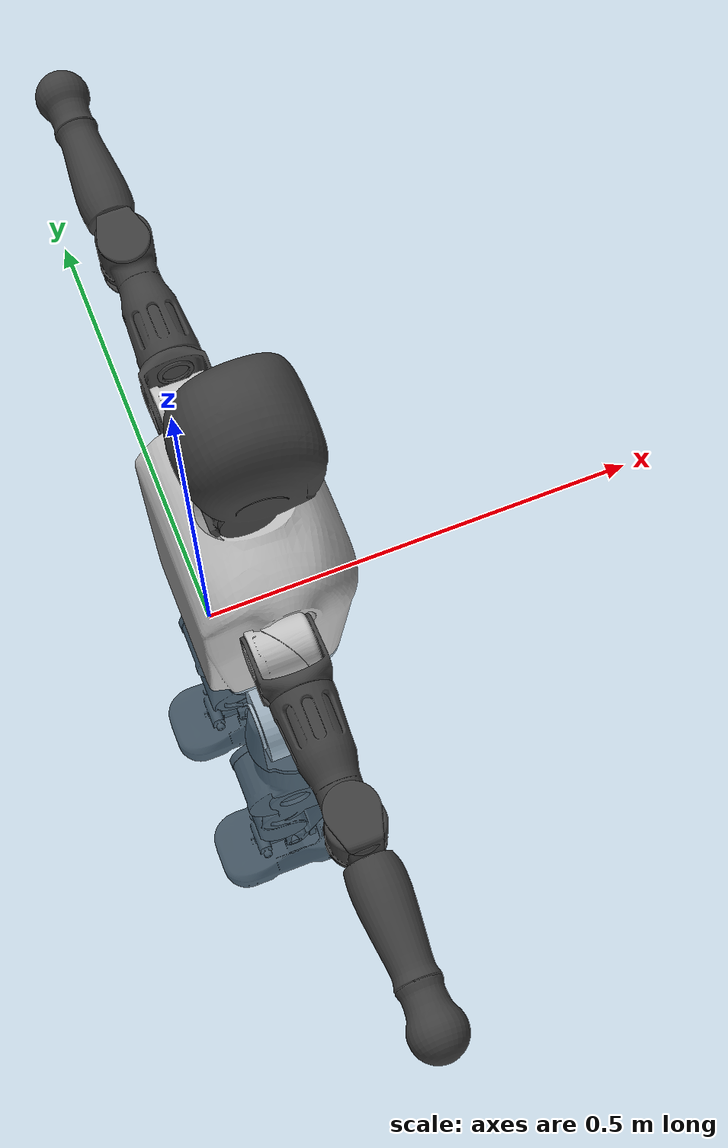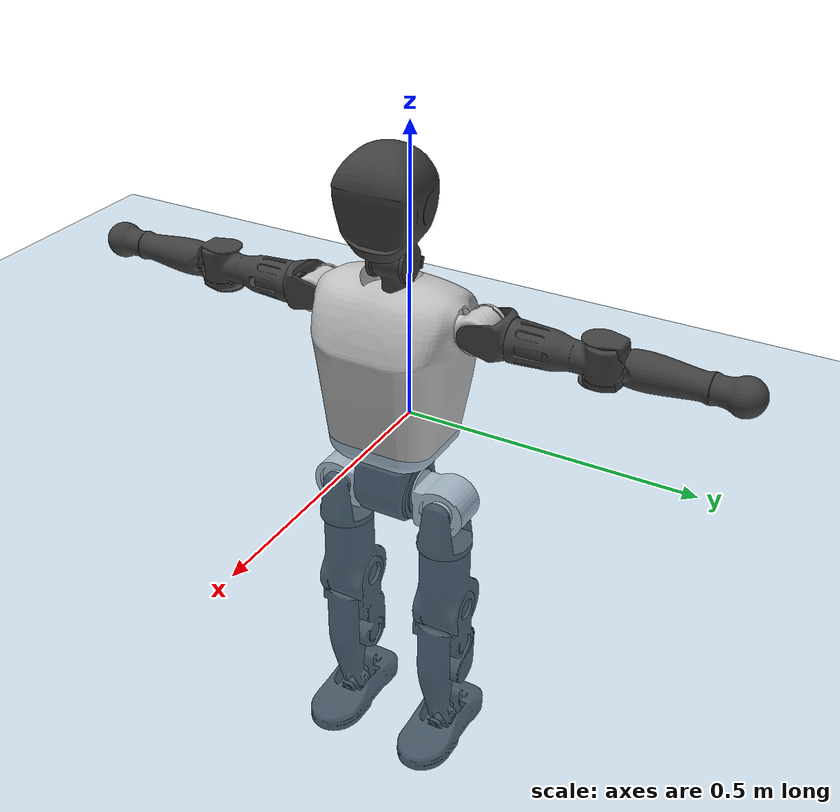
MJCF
<mujoco model="T1">
  <compiler angle="radian" assetdir="assets" balanceinertia="true" inertiafromgeom="false"/>

  <option timestep="0.005" density="1.2" viscosity="2e-05"/>

  <size nkey="1"/>

  <visual>
    <quality shadowsize="8192"/>
    <map shadowclip="0.5"/>
  </visual>

  <default>
    <default class="/">
      <joint armature="0.01" damping="0.01" frictionloss="0.1"/>
      <geom contype="0" conaffinity="0" group="1" solref="-1000 -80"/>
      <site size="0.01 0.005 0.005" group="5"/>
      <general forcelimited="true" biastype="affine" gainprm="25" biasprm="0 -25 -0.6"/>
      <default class="t1">
        <geom rgba="0.25 0.25 0.25 1"/>
        <default class="visual">
          <geom type="mesh" group="2"/>
        </default>
        <default class="collision">
          <geom group="3"/>
        </default>
        <default class="foot">
          <geom size="0.1115 0.05 0.015" type="box" condim="6" group="4" priority="1" solimp="0.015 1 0.015"/>
        </default>
        <default class="reward_collision_sphere">
          <geom group="5" rgba="1 0 0 1"/>
        </default>
      </default>
    </default>
  </default>

  <asset>
    <texture type="skybox" colorspace="auto" name="//unnamed_texture_0" builtin="gradient" rgb1="0.95 0.95 0.95" rgb2="0.95 0.95 0.95" width="100" height="600"/>
    <texture type="2d" colorspace="auto" name="texplane" builtin="checker" rgb1="0.345 0.575 0.748" rgb2="0.345 0.575 0.748" markrgb="1 1 1" width="512" height="512"/>
    <material name="MatPlane" class="/" texture="texplane" texuniform="true" texrepeat="2 2" specular="0.9"/>
    <mesh name="Trunk" class="/" file="Trunk.stl"/>
    <mesh name="H1" class="/" file="H1.stl"/>
    <mesh name="H2" class="/" file="H2.stl"/>
    <mesh name="AL1" class="/" file="AL1.stl"/>
    <mesh name="AL2" class="/" file="AL2.stl"/>
    <mesh name="AL3" class="/" file="AL3.stl"/>
    <mesh name="left_hand_link" class="/" file="left_hand_link.stl"/>
    <mesh name="AR1" class="/" file="AR1.stl"/>
    <mesh name="AR2" class="/" file="AR2.stl"/>
    <mesh name="AR3" class="/" file="AR3.stl"/>
    <mesh name="right_hand_link" class="/" file="right_hand_link.stl"/>
    <mesh name="Waist" class="/" file="Waist.stl"/>
    <mesh name="Hip_Pitch_Left" class="/" file="Hip_Pitch_Left.stl"/>
    <mesh name="Hip_Roll_Left" class="/" file="Hip_Roll_Left.stl"/>
    <mesh name="Hip_Yaw_Left" class="/" file="Hip_Yaw_Left.stl"/>
    <mesh name="Shank_Left" class="/" file="Shank_Left.stl"/>
    <mesh name="Ankle_Cross_Left" class="/" file="Ankle_Cross_Left.stl"/>
    <mesh name="left_foot_link" class="/" file="left_foot_link.stl"/>
    <mesh name="Hip_Pitch_Right" class="/" file="Hip_Pitch_Right.stl"/>
    <mesh name="Hip_Roll_Right" class="/" file="Hip_Roll_Right.stl"/>
    <mesh name="Hip_Yaw_Right" class="/" file="Hip_Yaw_Right.stl"/>
    <mesh name="Shank_Right" class="/" file="Shank_Right.stl"/>
    <mesh name="Ankle_Cross_Right" class="/" file="Ankle_Cross_Right.stl"/>
    <mesh name="right_foot_link" class="/" file="right_foot_link.stl"/>
  </asset>

  <worldbody>
    <geom name="floor" class="/" size="100 100 0.125" type="plane" group="0" material="MatPlane"/>
    <light name="toplight_shadow" class="/" pos="0 0 5" dir="0.0990148 0.0990148 -0.990148" type="directional" ambient="0.04 0.04 0.04" diffuse="0.55 0.55 0.55" specular="0.12 0.12 0.12"/>
    <light name="toplight_fill" class="/" pos="0 0 5" dir="0.0990148 0.0990148 -0.990148" type="directional" castshadow="false" ambient="0.04 0.04 0.04" diffuse="0.3 0.3 0.3" specular="0.08 0.08 0.08"/>
    <body name="trunk" childclass="t1" pos="0.000199384 0.000908565 0.00209341" quat="1 6.48761e-06 2.98224e-06 -2.53493e-06">
      <inertial pos="0.0404048 -0.00285307 0.101532" quat="0.999956 0.000963717 -0.00926911 0.00105544" mass="8.00022" diaginertia="0.0259841 0.0503668 0.045762"/>
      <joint name="//unnamed_joint_0" type="free" armature="0" damping="0" frictionloss="0"/>
      <geom name="//unnamed_geom_1" class="visual" rgba="0.76 0.76 0.76 1" mesh="Trunk"/>
      <geom name="//unnamed_geom_2" class="collision" size="0.0664382 0.0885843 0.132876" pos="0.0464414 0 0.115836" type="box"/>
      <geom name="//unnamed_geom_3" class="reward_collision_sphere" size="0.101872" pos="0.0464414 0 0.0965297"/>
      <geom name="//unnamed_geom_4" class="reward_collision_sphere" size="0.0132876" pos="0.0464414 0.0780477 0"/>
      <geom name="//unnamed_geom_5" class="reward_collision_sphere" size="0.0132876" pos="0.0464414 -0.0780477 0"/>
      <geom name="//unnamed_geom_6" class="reward_collision_sphere" size="0.0132876" pos="0.0464414 0.0982482 0.173754"/>
      <geom name="//unnamed_geom_7" class="reward_collision_sphere" size="0.0132876" pos="0.0464414 -0.0982482 0.173754"/>
      <site name="imu" pos="-0.013568 0.0133261 -0.013677" size="0.00885843"/>
      <camera name="track" pos="0 -1.83642 0" quat="0.707107 0.707107 0 0" mode="trackcom"/>
      <camera name="ego_camera" pos="0.0944308 0 0.405425" quat="-0.5 -0.5 0.5 0.5"/>
      <body name="H1" pos="0.0476034 0.00075133 0.234508" quat="0.999999 5.80984e-05 -0.000591288 0.00129247">
        <inertial pos="-0.00107566 -0.00170657 0.0551498" quat="0.761155 -0.0156506 0.0030241 0.648374" mass="0.329347" diaginertia="6.72193e-05 0.000149863 0.00013047"/>
        <joint name="AAHead_yaw" pos="0 0 0" axis="-0.000964818 0.00768298 0.99997" range="-1.5925 1.5584" armature="0.0101945" damping="0" frictionloss="0.089872"/>
        <geom name="//unnamed_geom_8" class="visual" mesh="H1"/>
        <body name="H2" pos="0.0019975 -0.0020218 0.0594921" quat="1 0.00035747 9.32632e-05 0.000361884">
          <inertial pos="0.00470327 0.000190063 0.0951035" quat="0.988091 0.111182 -0.0737002 -0.0766953" mass="0.442455" diaginertia="0.000568128 0.00124836 0.00146699"/>
          <joint name="Head_pitch" pos="0 0 0" axis="-0.00232753 -0.99993 0.0115769" stiffness="0.00549028" range="-1.19985 0.317335" armature="0.00894334" damping="0" frictionloss="0.0921557"/>
          <geom name="//unnamed_geom_9" class="visual" mesh="H2"/>
          <geom name="//unnamed_geom_10" class="collision" size="0.0708674" pos="0.00774023 0 0.106183"/>
          <geom name="//unnamed_geom_11" class="reward_collision_sphere" size="0.0797258" pos="0.0154805 0 0.0965297"/>
        </body>
      </body>
      <body name="AL1" pos="0.0441464 0.0989708 0.21119" quat="0.999999 -0.00031418 0.000186551 0.00125989">
        <inertial pos="-0.000252551 0.04378 0.000216017" quat="0.504066 0.49315 -0.508405 0.494211" mass="0.368173" diaginertia="0.000388049 0.000844127 0.000244909"/>
        <joint name="Left_Shoulder_Pitch" pos="0 0 0" axis="-0.00311172 0.999995 0.00108518" range="-3.29795 1.2298" armature="0.00908929" damping="0.00995375" frictionloss="0.0802329"/>
        <geom name="//unnamed_geom_12" class="visual" rgba="0.76 0.76 0.76 1" mesh="AL1"/>
        <body name="AL2" pos="-0.000787954 0.0446601 0.000127659" quat="1 -1.68418e-05 -3.56067e-05 -7.73221e-06">
          <inertial pos="0.00211784 0.0357116 0.00247538" quat="0.487682 0.512863 -0.487843 0.511026" mass="0.118098" diaginertia="0.000114622 0.000223418 0.000154222"/>
          <joint name="Left_Shoulder_Roll" pos="0 0 0" axis="-0.99999 -0.00328826 -0.003124" stiffness="0.00475995" range="-1.51659 1.79529" armature="0.00777458" damping="0" frictionloss="0.0895719"/>
          <geom name="//unnamed_geom_13" class="visual" mesh="AL2"/>
          <body name="AL3" pos="0.00316407 0.0566844 -0.00169522" quat="1 0.000566109 -0.000272569 -5.61132e-05">
            <inertial pos="0.00177148 0.0782314 -0.000271576" quat="0.707996 0.706202 0.00405198 -0.00173702" mass="0.720062" diaginertia="0.00348716 0.00859229 0.000505534"/>
            <joint name="Left_Elbow_Pitch" pos="0 0 0" axis="-0.00726301 -0.999921 -0.0102936" range="-2.2188 2.32178" armature="0.00777298" damping="0.00732938" frictionloss="0.0784089"/>
            <geom name="//unnamed_geom_14" class="visual" mesh="AL3"/>
            <geom name="//unnamed_geom_15" class="collision" size="0.0265753 0.0664382" pos="0 0.0459104 0" quat="0.707105 0.707108 0 0" type="cylinder"/>
            <geom name="//unnamed_geom_16" class="reward_collision_sphere" size="0.0318903"/>
            <body name="left_hand_link" pos="-0.00176635 0.137854 0.00280725" quat="1 -0.00029004 6.38937e-05 -0.000153684">
              <inertial pos="-0.00021152 0.0996314 0.00155471" quat="0.707976 0.706237 -8.9051e-05 -0.000444681" mass="0.226904" diaginertia="0.00234107 0.00545126 0.000180197"/>
              <joint name="Left_Elbow_Yaw" pos="0 0 0" axis="0.00382394 -0.00307768 0.999988" range="-2.45871 0.00219334" armature="0.0101884" damping="0.0119569" frictionloss="0.0815619"/>
              <geom name="//unnamed_geom_17" class="visual" mesh="left_hand_link"/>
              <geom name="//unnamed_geom_18" class="collision" size="0.0265753 0.0775112" pos="0 0.119367 0" quat="0.707105 0.707108 0 0" type="cylinder"/>
              <geom name="//unnamed_geom_19" class="reward_collision_sphere" size="0.0442921"/>
              <geom name="//unnamed_geom_20" class="reward_collision_sphere" size="0.0310045" pos="0 0.101003 0"/>
              <geom name="//unnamed_geom_21" class="reward_collision_sphere" size="0.0310045" pos="0 0.197415 0"/>
            </body>
          </body>
        </body>
      </body>
      <body name="AR1" pos="0.0415036 -0.0945439 0.211882" quat="1 0.000464151 0.000550959 -0.000135219">
        <inertial pos="-0.00355896 -0.041698 0.00216653" quat="0.508816 0.488184 -0.499397 0.503374" mass="0.375712" diaginertia="0.00037692 0.000836999 0.000254958"/>
        <joint name="Right_Shoulder_Pitch" pos="0 0 0" axis="-0.00103995 -0.999999 -0.000819502" stiffness="0.00564082" range="-1.22903 3.30282" armature="0.00904297" damping="0.00991569" frictionloss="0.0785223"/>
        <geom name="//unnamed_geom_22" class="visual" rgba="0.76 0.76 0.76 1" mesh="AR1"/>
        <body name="AR2" pos="0.000280637 -0.0415697 0.000335523" quat="1 -0.000153879 3.77428e-06 0.000353689">
          <inertial pos="0.0025778 -0.0357481 0.0017833" quat="0.512244 0.48838 -0.511701 0.487085" mass="0.111314" diaginertia="0.000110991 0.000232891 0.000150556"/>
          <joint name="Right_Shoulder_Roll" pos="0 0 0" axis="-0.999907 -0.00846794 0.0106606" range="-1.71253 1.62457" armature="0.00787166" damping="0.0162212" frictionloss="0.0840626"/>
          <geom name="//unnamed_geom_23" class="visual" mesh="AR2"/>
          <body name="AR3" pos="0.000420721 -0.0545748 -0.00231507" quat="1 -1.00409e-05 -7.43703e-05 -0.000171951">
            <inertial pos="-0.0001049 -0.0811988 0.00269868" quat="0.700351 0.713777 -0.00552141 -0.000506074" mass="0.699823" diaginertia="0.00361517 0.00809389 0.000536277"/>
            <joint name="Right_Elbow_Pitch" pos="0 0 0" axis="-0.00454332 0.99999 0.000510472" range="-2.23608 2.22187" armature="0.00900146" damping="0.0207165" frictionloss="0.0890461"/>
            <geom name="//unnamed_geom_24" class="visual" mesh="AR3"/>
            <geom name="//unnamed_geom_25" class="collision" size="0.0265753 0.0664382" pos="0 -0.0459104 0" quat="0.707105 0.707108 0 0" type="cylinder"/>
            <geom name="//unnamed_geom_26" class="reward_collision_sphere" size="0.0318903"/>
            <body name="right_hand_link" pos="0.000541294 -0.13501 1.96703e-05" quat="1 -0.000267948 0.000327156 8.75145e-05">
              <inertial pos="-0.000281742 -0.0994068 -0.00164408" quat="0.706153 0.708055 0.00237875 -0.000844682" mass="0.226581" diaginertia="0.00222808 0.00527342 0.000174082"/>
              <joint name="Right_Elbow_Yaw" pos="0 0 0" axis="0.00159149 -0.00021756 0.999999" stiffness="0.00183512" range="-0.0198131 2.44877" armature="0.00840229" damping="0.00329087" frictionloss="0.0979446"/>
              <geom name="//unnamed_geom_27" class="visual" mesh="right_hand_link"/>
              <geom name="//unnamed_geom_28" class="collision" size="0.0265753 0.0775112" pos="0 -0.119367 0" quat="0.707105 0.707108 0 0" type="cylinder"/>
              <geom name="//unnamed_geom_29" class="reward_collision_sphere" size="0.0442921"/>
              <geom name="//unnamed_geom_30" class="reward_collision_sphere" size="0.0310045" pos="0 -0.101003 0"/>
              <geom name="//unnamed_geom_31" class="reward_collision_sphere" size="0.0310045" pos="0 -0.197415 0"/>
            </body>
          </body>
        </body>
      </body>
      <body name="Waist" pos="0.0504355 -0.00112072 -0.11078" quat="1 -2.67557e-05 -1.9162e-05 2.73361e-05">
        <inertial pos="-0.000957932 0.00142739 0.00700817" quat="0.983491 0.00161938 -0.180881 0.00506511" mass="1.81321" diaginertia="0.00144738 0.00350608 0.00403718"/>
        <joint name="Waist" pos="0 0 0" axis="0.0104103 -0.00513851 0.999933" stiffness="0.00545085" range="-1.57792 1.57661" armature="0.0084431" damping="0.02565" frictionloss="0.086758"/>
        <geom name="//unnamed_geom_32" class="visual" mesh="Waist"/>
        <body name="Hip_Pitch_Left" pos="-0.00172087 0.0990981 0.00188416" quat="0.999999 0.000193356 0.0013137 0.000446527">
          <inertial pos="-0.001837 -0.00429511 -0.0179342" quat="0.975333 0.220334 0.013317 0.000281206" mass="0.693711" diaginertia="0.000484806 0.00093099 0.00104978"/>
          <joint name="Left_Hip_Pitch" pos="0 0 0" axis="0.00131304 0.999999 0.000656976" range="-1.78392 1.58076" armature="0.00763659" damping="0.0126277" frictionloss="0.100306"/>
          <geom name="//unnamed_geom_33" class="visual" rgba="0.76 0.76 0.76 1" mesh="Hip_Pitch_Left"/>
          <body name="Hip_Roll_Left" pos="0.00335867 -0.0012871 -0.0220947" quat="1 0.000585471 0.000191336 -0.000517787">
            <inertial pos="0.00290757 -0.000877388 -0.0545067" quat="0.705959 -0.00719606 -0.00801664 0.708171" mass="0.258784" diaginertia="0.000486364 0.000978696 0.000424814"/>
            <joint name="Left_Hip_Roll" pos="0 0 0" axis="-0.999997 0.00123973 0.00197768" range="-1.56759 0.212614" armature="0.00974923" damping="0.0216744" frictionloss="0.0886905"/>
            <geom name="//unnamed_geom_34" class="visual" mesh="Hip_Roll_Left"/>
            <geom name="//unnamed_geom_35" class="reward_collision_sphere" size="0.0487214"/>
            <body name="Hip_Yaw_Left" pos="0.000156155 0.000790095 -0.0781135" quat="1 5.22865e-05 0.00010642 5.60146e-05">
              <inertial pos="-0.00488515 0.00189861 -0.0834542" quat="0.695509 -0.0330371 -0.0341863 0.716943" mass="1.53557" diaginertia="0.00730444 0.016872 0.00219456"/>
              <joint name="Left_Hip_Yaw" pos="0 0 0" axis="0.00425861 0.00182219 -0.999989" stiffness="0.000722878" range="-1.00535 0.996606" armature="0.00881554" damping="0.00465861" frictionloss="0.0976502"/>
              <geom name="//unnamed_geom_36" class="visual" mesh="Hip_Yaw_Left"/>
              <geom name="//unnamed_geom_37" class="collision" size="0.0442921 0.0708674" type="cylinder"/>
              <body name="Shank_Left" pos="-0.00875797 -0.00181335 -0.131606" quat="0.999999 -0.000839149 0.00100725 -0.000131632">
                <inertial pos="-0.00445084 -0.00119626 -0.119772" quat="0.996854 -0.00333015 -0.0183504 0.0770351" mass="1.23393" diaginertia="0.00979692 0.0232137 0.00157842"/>
                <joint name="Left_Knee_Pitch" pos="0 0 0" axis="-0.0078544 0.999949 -0.00634572" range="-0.012964 2.28593" armature="0.0100234" damping="0" frictionloss="0.0883243"/>
                <geom name="//unnamed_geom_38" class="visual" mesh="Shank_Left"/>
                <geom name="//unnamed_geom_39" class="collision" size="0.0442921 0.0664382" pos="0 0 -0.115836" type="cylinder"/>
                <geom name="//unnamed_geom_40" class="reward_collision_sphere" size="0.0575798"/>
                <body name="Ankle_Cross_Left" pos="0.00131177 -0.00280912 -0.269386" quat="1 -0.000421294 -4.28396e-06 -0.000194238">
                  <inertial pos="-0.00203226 0.000230197 -0.0081444" quat="0.43949 0.543011 0.558908 0.446776" mass="0.0490953" diaginertia="8.22468e-06 1.6584e-05 9.37752e-06"/>
                  <joint name="Left_Ankle_Pitch" pos="0 0 0" axis="-0.000321461 1 -0.000605341" stiffness="0.00805672" range="-0.922148 0.403593" armature="0.00966948" damping="0" frictionloss="0.0962125"/>
                  <geom name="//unnamed_geom_41" class="visual" mesh="Ankle_Cross_Left"/>
                  <body name="left_foot_link" pos="-0.00222651 -0.00101424 -0.0145032" quat="0.999999 0.00115775 0.000113565 0.000710934">
                    <inertial pos="0.000604335 -0.000899888 -0.00914397" quat="-0.000446011 0.629091 -0.00709743 0.777299" mass="0.489468" diaginertia="0.000764026 0.00160997 0.00194278"/>
                    <joint name="Left_Ankle_Roll" pos="0 0 0" axis="-0.999943 -0.00189543 0.0104665" stiffness="0.00847141" range="-0.431955 0.492645" armature="0.00901044" damping="0.0103647" frictionloss="0.0986034"/>
                    <geom name="//unnamed_geom_42" class="visual" mesh="left_foot_link"/>
                    <geom name="left_foot" class="foot" size="0.10321 0.0407378 0.0144002" pos="0.00774023 0 -0.0144795"/>
                    <geom name="//unnamed_geom_44" class="reward_collision_sphere" size="0.0460638" pos="0.00774023 0 -0.0144795"/>
                    <geom name="//unnamed_geom_45" class="reward_collision_sphere" size="0.0265753" pos="0.0735322 -0.0211188 -0.0144795"/>
                    <geom name="//unnamed_geom_46" class="reward_collision_sphere" size="0.0265753" pos="-0.0541816 -0.0211188 -0.0144795"/>
                    <site name="left_foot" class="foot" pos="0.00774023 0 -0.0144795" size="0.00885843"/>
                  </body>
                </body>
              </body>
            </body>
          </body>
        </body>
        <body name="Hip_Pitch_Right" pos="-0.000786508 -0.0971205 4.18575e-05" quat="1 -0.00010263 -0.000383943 9.31365e-05">
          <inertial pos="0.000246923 0.00732369 -0.0181166" quat="0.975779 -0.218342 0.013032 0.00361629" mass="0.684827" diaginertia="0.000486487 0.000938808 0.00101594"/>
          <joint name="Right_Hip_Pitch" pos="0 0 0" axis="-0.00163247 -0.999999 -0.00023218" range="-1.56923 1.76753" armature="0.00896324" damping="0.00907368" frictionloss="0.0896365"/>
          <geom name="//unnamed_geom_47" class="visual" rgba="0.76 0.76 0.76 1" mesh="Hip_Pitch_Right"/>
          <body name="Hip_Roll_Right" pos="0.0019431 0.000539453 -0.0217573" quat="1 0.000112153 1.19448e-05 -1.18444e-05">
            <inertial pos="0.00157374 0.00137204 -0.0518865" quat="0.706628 -0.0181888 -0.00493351 0.707334" mass="0.255926" diaginertia="0.000480757 0.000980509 0.00041167"/>
            <joint name="Right_Hip_Roll" pos="0 0 0" axis="-0.999993 0.00354936 -0.000964238" stiffness="0.00486317" range="-0.177914 1.57809" armature="0.00811045" damping="0.00826394" frictionloss="0.0887195"/>
            <geom name="//unnamed_geom_48" class="visual" mesh="Hip_Roll_Right"/>
            <geom name="//unnamed_geom_49" class="reward_collision_sphere" size="0.0487214"/>
            <body name="Hip_Yaw_Right" pos="-0.00258558 0.0018251 -0.0789427" quat="1 -0.000270735 -0.000113402 -0.000388469">
              <inertial pos="-0.00788546 -0.000793962 -0.0887304" quat="0.717326 -0.0277119 -0.0454188 0.694703" mass="1.53892" diaginertia="0.00710254 0.0161597 0.00212446"/>
              <joint name="Right_Hip_Yaw" pos="0 0 0" axis="-0.000277154 -0.00197648 -0.999998" range="-0.949764 0.969034" armature="0.0086674" damping="0.0060851" frictionloss="0.0878907"/>
              <geom name="//unnamed_geom_50" class="visual" mesh="Hip_Yaw_Right"/>
              <geom name="//unnamed_geom_51" class="collision" size="0.0442921 0.0708674" type="cylinder"/>
              <body name="Shank_Right" pos="-0.0102699 0.001731 -0.126912" quat="1 -0.00014684 0.000159537 -0.00014531">
                <inertial pos="-0.0021973 -0.00115897 -0.11911" quat="0.999686 -0.00109071 -0.0148687 -0.0201325" mass="1.16837" diaginertia="0.00945331 0.0228063 0.0015933"/>
                <joint name="Right_Knee_Pitch" pos="0 0 0" axis="-0.00221338 -0.999995 0.00245995" range="-2.35097 -0.0210795" armature="0.00965117" damping="0" frictionloss="0.0999437"/>
                <geom name="//unnamed_geom_52" class="visual" mesh="Shank_Right"/>
                <geom name="//unnamed_geom_53" class="collision" size="0.0442921 0.0664382" pos="0 0 -0.115836" type="cylinder"/>
                <geom name="//unnamed_geom_54" class="reward_collision_sphere" size="0.0575798"/>
                <body name="Ankle_Cross_Right" pos="-0.000701591 -0.00330058 -0.269682" quat="0.999999 0.000913798 -0.00102914 -0.000185821">
                  <inertial pos="-0.00179423 -0.000393045 -0.00675108" quat="0.443725 0.549394 0.55294 0.442189" mass="0.0507747" diaginertia="7.73762e-06 1.67182e-05 9.46519e-06"/>
                  <joint name="Right_Ankle_Pitch" pos="0 0 0" axis="-0.00111904 -0.999996 0.00261801" range="-0.371506 0.921877" armature="0.00891645" damping="0.0201795" frictionloss="0.0890864"/>
                  <geom name="//unnamed_geom_55" class="visual" mesh="Ankle_Cross_Right"/>
                  <body name="right_foot_link" pos="6.04565e-05 -0.00101944 -0.0130791" quat="0.999999 -0.000231108 -0.000105716 -0.00128107">
                    <inertial pos="-0.00260112 0.000752476 -0.00887971" quat="-0.00109126 0.620195 -0.00170262 0.784445" mass="0.475881" diaginertia="0.000723608 0.00151351 0.00183346"/>
                    <joint name="Right_Ankle_Roll" pos="0 0 0" axis="-1 -0.000525595 -0.000242244" stiffness="0.00247392" range="-0.40737 0.417587" armature="0.00871233" damping="0.00282054" frictionloss="0.0843312"/>
                    <geom name="//unnamed_geom_56" class="visual" mesh="right_foot_link"/>
                    <geom name="right_foot" class="foot" size="0.101817 0.0427079 0.013782" pos="0.00774023 0 -0.0144795"/>
                    <geom name="//unnamed_geom_58" class="reward_collision_sphere" size="0.0354337"/>
                    <geom name="//unnamed_geom_59" class="reward_collision_sphere" size="0.0265753" pos="0.00774023 0 -0.0144795"/>
                    <geom name="//unnamed_geom_60" class="reward_collision_sphere" size="0.0265753" pos="0.0735322 0.0211188 -0.0144795"/>
                    <geom name="//unnamed_geom_61" class="reward_collision_sphere" size="0.0265753" pos="-0.0541816 0.0211188 -0.0144795"/>
                    <site name="right_foot" class="foot" pos="0.00774023 0 -0.0144795" size="0.00885843"/>
                  </body>
                </body>
              </body>
            </body>
          </body>
        </body>
      </body>
    </body>
  </worldbody>

  <contact>
    <pair class="/" geom1="floor" geom2="left_foot" name="//unnamed_contact_0"/>
    <pair class="/" geom1="floor" geom2="right_foot" name="//unnamed_contact_1"/>
  </contact>

  <actuator>
    <general name="AAHead_yaw" class="/" joint="AAHead_yaw" forcerange="-6.31055 6.31055" gainprm="20.6089" biasprm="0 -20.6089 -0.504446"/>
    <general name="Head_pitch" class="/" joint="Head_pitch" forcerange="-5.99177 5.99177" gainprm="20.6089" biasprm="0 -20.6089 -0.504446"/>
    <general name="Left_Shoulder_Pitch" class="/" joint="Left_Shoulder_Pitch" forcerange="-15.4575 15.4575" gainprm="20.6089" biasprm="0 -20.6089 -0.504446"/>
    <general name="Left_Shoulder_Roll" class="/" joint="Left_Shoulder_Roll" forcerange="-15.0529 15.0529" gainprm="20.6089" biasprm="0 -20.6089 -0.504446"/>
    <general name="Left_Elbow_Pitch" class="/" joint="Left_Elbow_Pitch" forcerange="-14.4045 14.4045" gainprm="20.6089" biasprm="0 -20.6089 -0.504446"/>
    <general name="Left_Elbow_Yaw" class="/" joint="Left_Elbow_Yaw" forcerange="-17.665 17.665" gainprm="20.6089" biasprm="0 -20.6089 -0.504446"/>
    <general name="Right_Shoulder_Pitch" class="/" joint="Right_Shoulder_Pitch" forcerange="-17.6601 17.6601" gainprm="20.6089" biasprm="0 -20.6089 -0.504446"/>
    <general name="Right_Shoulder_Roll" class="/" joint="Right_Shoulder_Roll" forcerange="-15.7388 15.7388" gainprm="20.6089" biasprm="0 -20.6089 -0.504446"/>
    <general name="Right_Elbow_Pitch" class="/" joint="Right_Elbow_Pitch" forcerange="-15.9975 15.9975" gainprm="20.6089" biasprm="0 -20.6089 -0.504446"/>
    <general name="Right_Elbow_Yaw" class="/" joint="Right_Elbow_Yaw" forcerange="-15.712 15.712" gainprm="20.6089" biasprm="0 -20.6089 -0.504446"/>
    <general name="Waist" class="/" joint="Waist" forcerange="-26.4078 26.4078" gainprm="20.6089" biasprm="0 -20.6089 -0.504446"/>
    <general name="Left_Hip_Pitch" class="/" joint="Left_Hip_Pitch" forcerange="-39.3766 39.3766" gainprm="20.6089" biasprm="0 -20.6089 -0.504446"/>
    <general name="Left_Hip_Roll" class="/" joint="Left_Hip_Roll" forcerange="-29.3144 29.3144" gainprm="20.6089" biasprm="0 -20.6089 -0.504446"/>
    <general name="Left_Hip_Yaw" class="/" joint="Left_Hip_Yaw" forcerange="-23.9809 23.9809" gainprm="20.6089" biasprm="0 -20.6089 -0.504446"/>
    <general name="Left_Knee_Pitch" class="/" joint="Left_Knee_Pitch" forcerange="-47.7251 47.7251" gainprm="20.6089" biasprm="0 -20.6089 -0.504446"/>
    <general name="Left_Ankle_Pitch" class="/" joint="Left_Ankle_Pitch" forcerange="-17.9408 17.9408" gainprm="20.6089" biasprm="0 -20.6089 -0.504446"/>
    <general name="Left_Ankle_Roll" class="/" joint="Left_Ankle_Roll" forcerange="-13.2543 13.2543" gainprm="20.6089" biasprm="0 -20.6089 -0.504446"/>
    <general name="Right_Hip_Pitch" class="/" joint="Right_Hip_Pitch" forcerange="-39.2864 39.2864" gainprm="20.6089" biasprm="0 -20.6089 -0.504446"/>
    <general name="Right_Hip_Roll" class="/" joint="Right_Hip_Roll" forcerange="-26.3326 26.3326" gainprm="20.6089" biasprm="0 -20.6089 -0.504446"/>
    <general name="Right_Hip_Yaw" class="/" joint="Right_Hip_Yaw" forcerange="-27.8694 27.8694" gainprm="20.6089" biasprm="0 -20.6089 -0.504446"/>
    <general name="Right_Knee_Pitch" class="/" joint="Right_Knee_Pitch" forcerange="-53.531 53.531" gainprm="20.6089" biasprm="0 -20.6089 -0.504446"/>
    <general name="Right_Ankle_Pitch" class="/" joint="Right_Ankle_Pitch" forcerange="-15.9123 15.9123" gainprm="20.6089" biasprm="0 -20.6089 -0.504446"/>
    <general name="Right_Ankle_Roll" class="/" joint="Right_Ankle_Roll" forcerange="-13.3172 13.3172" gainprm="20.6089" biasprm="0 -20.6089 -0.504446"/>
  </actuator>

  <sensor>
    <gyro site="imu" name="imu_angular_velocity"/>
    <velocimeter site="imu" name="imu_linear_velocity"/>
    <framelinvel objtype="site" objname="left_foot" name="left_foot_global_linear_velocity"/>
    <framelinvel objtype="site" objname="right_foot" name="right_foot_global_linear_velocity"/>
  </sensor>

  <keyframe>
    <key name="home" qpos="0 0 0.6385 1 0 0 0 0 0 0 1.4 0 -0.4 0 -1.4 0 0.4 0 -0.4 0 0 0.8 -0.4 0 0.4 0 0 -0.8 0.4 0"/>
  </keyframe>
</mujoco>
